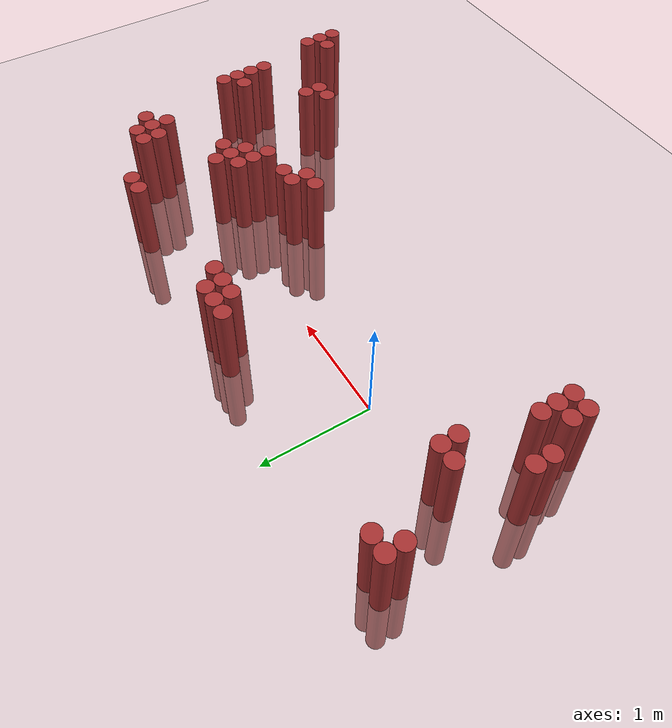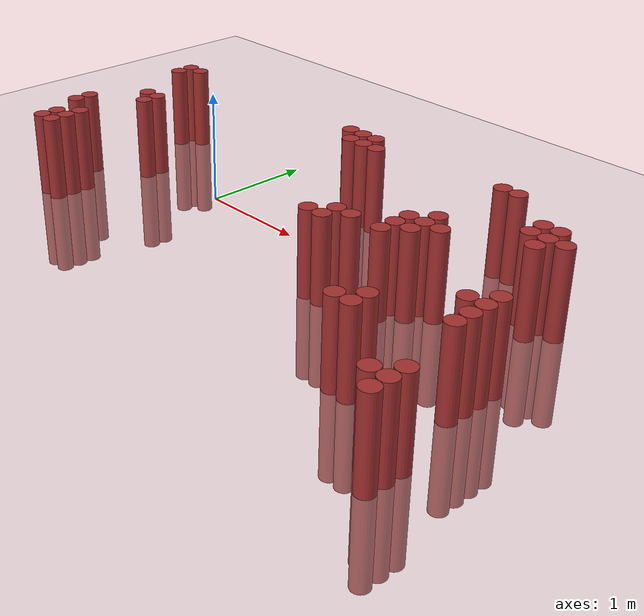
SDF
<sdf version="1.6">
 <world name="default">
  <model name="ground_plane">
   <static>1</static>
   <link name="link">
    <collision name="collision">
     <geometry><plane><normal>0 0 1</normal><size>100 100</size></plane></geometry>
     <surface><friction><ode><mu>100</mu><mu2>50</mu2></ode></friction></surface>
    </collision>
    <visual name="visual">
     <cast_shadows>0</cast_shadows>
     <geometry><plane><normal>0 0 1</normal><size>100 100</size></plane></geometry>
     <material>
      <script><uri>file://media/materials/scripts/gazebo.material</uri><name>Gazebo/Grey</name></script>
     </material>
    </visual>
   </link>
  </model>
  <model name="unit_cylinder_327">
   <static>1</static>
   <pose>-1.325000 -0.575000 0.000000 0.000000 0.000000 0.000000</pose>
   <link name="link">
    <inertial>
     <mass>1</mass>
     <inertia><ixx>0.145833</ixx><ixy>0</ixy><ixz>0</ixz><iyy>0.145833</iyy><iyz>0</iyz><izz>0.125</izz></inertia>
    </inertial>
    <collision name="collision">
     <geometry><cylinder><radius>0.075000</radius><length>1.5</length></cylinder></geometry>
    </collision>
    <visual name="visual">
     <geometry><cylinder><radius>0.075000</radius><length>1.5</length></cylinder></geometry>
     <material>
      <ambient>0.648000 0.192000 0.192000 1</ambient>
      <diffuse>0.648000 0.192000 0.192000 1</diffuse>
     </material>
     <material>
      <script><name>Gazebo/Grey</name><uri>file://media/materials/scripts/gazebo.material</uri></script>
     </material>
    </visual>
   </link>
  </model>
  <model name="unit_cylinder_328">
   <static>1</static>
   <pose>-1.325000 -0.425000 0.000000 0.000000 0.000000 0.000000</pose>
   <link name="link">
    <inertial>
     <mass>1</mass>
     <inertia><ixx>0.145833</ixx><ixy>0</ixy><ixz>0</ixz><iyy>0.145833</iyy><iyz>0</iyz><izz>0.125</izz></inertia>
    </inertial>
    <collision name="collision">
     <geometry><cylinder><radius>0.075000</radius><length>1.5</length></cylinder></geometry>
    </collision>
    <visual name="visual">
     <geometry><cylinder><radius>0.075000</radius><length>1.5</length></cylinder></geometry>
     <material>
      <ambient>0.648000 0.192000 0.192000 1</ambient>
      <diffuse>0.648000 0.192000 0.192000 1</diffuse>
     </material>
     <material>
      <script><name>Gazebo/Grey</name><uri>file://media/materials/scripts/gazebo.material</uri></script>
     </material>
    </visual>
   </link>
  </model>
  <model name="unit_cylinder_329">
   <static>1</static>
   <pose>-1.325000 0.625000 0.000000 0.000000 0.000000 0.000000</pose>
   <link name="link">
    <inertial>
     <mass>1</mass>
     <inertia><ixx>0.145833</ixx><ixy>0</ixy><ixz>0</ixz><iyy>0.145833</iyy><iyz>0</iyz><izz>0.125</izz></inertia>
    </inertial>
    <collision name="collision">
     <geometry><cylinder><radius>0.075000</radius><length>1.5</length></cylinder></geometry>
    </collision>
    <visual name="visual">
     <geometry><cylinder><radius>0.075000</radius><length>1.5</length></cylinder></geometry>
     <material>
      <ambient>0.648000 0.192000 0.192000 1</ambient>
      <diffuse>0.648000 0.192000 0.192000 1</diffuse>
     </material>
     <material>
      <script><name>Gazebo/Grey</name><uri>file://media/materials/scripts/gazebo.material</uri></script>
     </material>
    </visual>
   </link>
  </model>
  <model name="unit_cylinder_330">
   <static>1</static>
   <pose>-1.325000 0.775000 0.000000 0.000000 0.000000 0.000000</pose>
   <link name="link">
    <inertial>
     <mass>1</mass>
     <inertia><ixx>0.145833</ixx><ixy>0</ixy><ixz>0</ixz><iyy>0.145833</iyy><iyz>0</iyz><izz>0.125</izz></inertia>
    </inertial>
    <collision name="collision">
     <geometry><cylinder><radius>0.075000</radius><length>1.5</length></cylinder></geometry>
    </collision>
    <visual name="visual">
     <geometry><cylinder><radius>0.075000</radius><length>1.5</length></cylinder></geometry>
     <material>
      <ambient>0.648000 0.192000 0.192000 1</ambient>
      <diffuse>0.648000 0.192000 0.192000 1</diffuse>
     </material>
     <material>
      <script><name>Gazebo/Grey</name><uri>file://media/materials/scripts/gazebo.material</uri></script>
     </material>
    </visual>
   </link>
  </model>
  <model name="unit_cylinder_332">
   <static>1</static>
   <pose>-1.175000 -1.025000 0.000000 0.000000 0.000000 0.000000</pose>
   <link name="link">
    <inertial>
     <mass>1</mass>
     <inertia><ixx>0.145833</ixx><ixy>0</ixy><ixz>0</ixz><iyy>0.145833</iyy><iyz>0</iyz><izz>0.125</izz></inertia>
    </inertial>
    <collision name="collision">
     <geometry><cylinder><radius>0.075000</radius><length>1.5</length></cylinder></geometry>
    </collision>
    <visual name="visual">
     <geometry><cylinder><radius>0.075000</radius><length>1.5</length></cylinder></geometry>
     <material>
      <ambient>0.648000 0.192000 0.192000 1</ambient>
      <diffuse>0.648000 0.192000 0.192000 1</diffuse>
     </material>
     <material>
      <script><name>Gazebo/Grey</name><uri>file://media/materials/scripts/gazebo.material</uri></script>
     </material>
    </visual>
   </link>
  </model>
  <model name="unit_cylinder_333">
   <static>1</static>
   <pose>-1.175000 -0.875000 0.000000 0.000000 0.000000 0.000000</pose>
   <link name="link">
    <inertial>
     <mass>1</mass>
     <inertia><ixx>0.145833</ixx><ixy>0</ixy><ixz>0</ixz><iyy>0.145833</iyy><iyz>0</iyz><izz>0.125</izz></inertia>
    </inertial>
    <collision name="collision">
     <geometry><cylinder><radius>0.075000</radius><length>1.5</length></cylinder></geometry>
    </collision>
    <visual name="visual">
     <geometry><cylinder><radius>0.075000</radius><length>1.5</length></cylinder></geometry>
     <material>
      <ambient>0.648000 0.192000 0.192000 1</ambient>
      <diffuse>0.648000 0.192000 0.192000 1</diffuse>
     </material>
     <material>
      <script><name>Gazebo/Grey</name><uri>file://media/materials/scripts/gazebo.material</uri></script>
     </material>
    </visual>
   </link>
  </model>
  <model name="unit_cylinder_334">
   <static>1</static>
   <pose>-1.175000 0.775000 0.000000 0.000000 0.000000 0.000000</pose>
   <link name="link">
    <inertial>
     <mass>1</mass>
     <inertia><ixx>0.145833</ixx><ixy>0</ixy><ixz>0</ixz><iyy>0.145833</iyy><iyz>0</iyz><izz>0.125</izz></inertia>
    </inertial>
    <collision name="collision">
     <geometry><cylinder><radius>0.075000</radius><length>1.5</length></cylinder></geometry>
    </collision>
    <visual name="visual">
     <geometry><cylinder><radius>0.075000</radius><length>1.5</length></cylinder></geometry>
     <material>
      <ambient>0.648000 0.192000 0.192000 1</ambient>
      <diffuse>0.648000 0.192000 0.192000 1</diffuse>
     </material>
     <material>
      <script><name>Gazebo/Grey</name><uri>file://media/materials/scripts/gazebo.material</uri></script>
     </material>
    </visual>
   </link>
  </model>
  <model name="unit_cylinder_335">
   <static>1</static>
   <pose>-1.025000 -1.025000 0.000000 0.000000 0.000000 0.000000</pose>
   <link name="link">
    <inertial>
     <mass>1</mass>
     <inertia><ixx>0.145833</ixx><ixy>0</ixy><ixz>0</ixz><iyy>0.145833</iyy><iyz>0</iyz><izz>0.125</izz></inertia>
    </inertial>
    <collision name="collision">
     <geometry><cylinder><radius>0.075000</radius><length>1.5</length></cylinder></geometry>
    </collision>
    <visual name="visual">
     <geometry><cylinder><radius>0.075000</radius><length>1.5</length></cylinder></geometry>
     <material>
      <ambient>0.648000 0.192000 0.192000 1</ambient>
      <diffuse>0.648000 0.192000 0.192000 1</diffuse>
     </material>
     <material>
      <script><name>Gazebo/Grey</name><uri>file://media/materials/scripts/gazebo.material</uri></script>
     </material>
    </visual>
   </link>
  </model>
  <model name="unit_cylinder_336">
   <static>1</static>
   <pose>-1.025000 -0.875000 0.000000 0.000000 0.000000 0.000000</pose>
   <link name="link">
    <inertial>
     <mass>1</mass>
     <inertia><ixx>0.145833</ixx><ixy>0</ixy><ixz>0</ixz><iyy>0.145833</iyy><iyz>0</iyz><izz>0.125</izz></inertia>
    </inertial>
    <collision name="collision">
     <geometry><cylinder><radius>0.075000</radius><length>1.5</length></cylinder></geometry>
    </collision>
    <visual name="visual">
     <geometry><cylinder><radius>0.075000</radius><length>1.5</length></cylinder></geometry>
     <material>
      <ambient>0.648000 0.192000 0.192000 1</ambient>
      <diffuse>0.648000 0.192000 0.192000 1</diffuse>
     </material>
     <material>
      <script><name>Gazebo/Grey</name><uri>file://media/materials/scripts/gazebo.material</uri></script>
     </material>
    </visual>
   </link>
  </model>
  <model name="unit_cylinder_337">
   <static>1</static>
   <pose>-1.025000 -0.725000 0.000000 0.000000 0.000000 0.000000</pose>
   <link name="link">
    <inertial>
     <mass>1</mass>
     <inertia><ixx>0.145833</ixx><ixy>0</ixy><ixz>0</ixz><iyy>0.145833</iyy><iyz>0</iyz><izz>0.125</izz></inertia>
    </inertial>
    <collision name="collision">
     <geometry><cylinder><radius>0.075000</radius><length>1.5</length></cylinder></geometry>
    </collision>
    <visual name="visual">
     <geometry><cylinder><radius>0.075000</radius><length>1.5</length></cylinder></geometry>
     <material>
      <ambient>0.648000 0.192000 0.192000 1</ambient>
      <diffuse>0.648000 0.192000 0.192000 1</diffuse>
     </material>
     <material>
      <script><name>Gazebo/Grey</name><uri>file://media/materials/scripts/gazebo.material</uri></script>
     </material>
    </visual>
   </link>
  </model>
  <model name="unit_cylinder_338">
   <static>1</static>
   <pose>-1.025000 0.025000 0.000000 0.000000 0.000000 0.000000</pose>
   <link name="link">
    <inertial>
     <mass>1</mass>
     <inertia><ixx>0.145833</ixx><ixy>0</ixy><ixz>0</ixz><iyy>0.145833</iyy><iyz>0</iyz><izz>0.125</izz></inertia>
    </inertial>
    <collision name="collision">
     <geometry><cylinder><radius>0.075000</radius><length>1.5</length></cylinder></geometry>
    </collision>
    <visual name="visual">
     <geometry><cylinder><radius>0.075000</radius><length>1.5</length></cylinder></geometry>
     <material>
      <ambient>0.648000 0.192000 0.192000 1</ambient>
      <diffuse>0.648000 0.192000 0.192000 1</diffuse>
     </material>
     <material>
      <script><name>Gazebo/Grey</name><uri>file://media/materials/scripts/gazebo.material</uri></script>
     </material>
    </visual>
   </link>
  </model>
  <model name="unit_cylinder_339">
   <static>1</static>
   <pose>-0.875000 -0.125000 0.000000 0.000000 0.000000 0.000000</pose>
   <link name="link">
    <inertial>
     <mass>1</mass>
     <inertia><ixx>0.145833</ixx><ixy>0</ixy><ixz>0</ixz><iyy>0.145833</iyy><iyz>0</iyz><izz>0.125</izz></inertia>
    </inertial>
    <collision name="collision">
     <geometry><cylinder><radius>0.075000</radius><length>1.5</length></cylinder></geometry>
    </collision>
    <visual name="visual">
     <geometry><cylinder><radius>0.075000</radius><length>1.5</length></cylinder></geometry>
     <material>
      <ambient>0.648000 0.192000 0.192000 1</ambient>
      <diffuse>0.648000 0.192000 0.192000 1</diffuse>
     </material>
     <material>
      <script><name>Gazebo/Grey</name><uri>file://media/materials/scripts/gazebo.material</uri></script>
     </material>
    </visual>
   </link>
  </model>
  <model name="unit_cylinder_340">
   <static>1</static>
   <pose>-0.875000 0.025000 0.000000 0.000000 0.000000 0.000000</pose>
   <link name="link">
    <inertial>
     <mass>1</mass>
     <inertia><ixx>0.145833</ixx><ixy>0</ixy><ixz>0</ixz><iyy>0.145833</iyy><iyz>0</iyz><izz>0.125</izz></inertia>
    </inertial>
    <collision name="collision">
     <geometry><cylinder><radius>0.075000</radius><length>1.5</length></cylinder></geometry>
    </collision>
    <visual name="visual">
     <geometry><cylinder><radius>0.075000</radius><length>1.5</length></cylinder></geometry>
     <material>
      <ambient>0.648000 0.192000 0.192000 1</ambient>
      <diffuse>0.648000 0.192000 0.192000 1</diffuse>
     </material>
     <material>
      <script><name>Gazebo/Grey</name><uri>file://media/materials/scripts/gazebo.material</uri></script>
     </material>
    </visual>
   </link>
  </model>
  <model name="unit_cylinder_352">
   <static>1</static>
   <pose>0.925000 0.775000 0.000000 0.000000 0.000000 0.000000</pose>
   <link name="link">
    <inertial>
     <mass>1</mass>
     <inertia><ixx>0.145833</ixx><ixy>0</ixy><ixz>0</ixz><iyy>0.145833</iyy><iyz>0</iyz><izz>0.125</izz></inertia>
    </inertial>
    <collision name="collision">
     <geometry><cylinder><radius>0.075000</radius><length>1.5</length></cylinder></geometry>
    </collision>
    <visual name="visual">
     <geometry><cylinder><radius>0.075000</radius><length>1.5</length></cylinder></geometry>
     <material>
      <ambient>0.648000 0.192000 0.192000 1</ambient>
      <diffuse>0.648000 0.192000 0.192000 1</diffuse>
     </material>
     <material>
      <script><name>Gazebo/Grey</name><uri>file://media/materials/scripts/gazebo.material</uri></script>
     </material>
    </visual>
   </link>
  </model>
  <model name="unit_cylinder_355">
   <static>1</static>
   <pose>1.075000 0.625000 0.000000 0.000000 0.000000 0.000000</pose>
   <link name="link">
    <inertial>
     <mass>1</mass>
     <inertia><ixx>0.145833</ixx><ixy>0</ixy><ixz>0</ixz><iyy>0.145833</iyy><iyz>0</iyz><izz>0.125</izz></inertia>
    </inertial>
    <collision name="collision">
     <geometry><cylinder><radius>0.075000</radius><length>1.5</length></cylinder></geometry>
    </collision>
    <visual name="visual">
     <geometry><cylinder><radius>0.075000</radius><length>1.5</length></cylinder></geometry>
     <material>
      <ambient>0.648000 0.192000 0.192000 1</ambient>
      <diffuse>0.648000 0.192000 0.192000 1</diffuse>
     </material>
     <material>
      <script><name>Gazebo/Grey</name><uri>file://media/materials/scripts/gazebo.material</uri></script>
     </material>
    </visual>
   </link>
  </model>
  <model name="unit_cylinder_356">
   <static>1</static>
   <pose>1.075000 0.775000 0.000000 0.000000 0.000000 0.000000</pose>
   <link name="link">
    <inertial>
     <mass>1</mass>
     <inertia><ixx>0.145833</ixx><ixy>0</ixy><ixz>0</ixz><iyy>0.145833</iyy><iyz>0</iyz><izz>0.125</izz></inertia>
    </inertial>
    <collision name="collision">
     <geometry><cylinder><radius>0.075000</radius><length>1.5</length></cylinder></geometry>
    </collision>
    <visual name="visual">
     <geometry><cylinder><radius>0.075000</radius><length>1.5</length></cylinder></geometry>
     <material>
      <ambient>0.648000 0.192000 0.192000 1</ambient>
      <diffuse>0.648000 0.192000 0.192000 1</diffuse>
     </material>
     <material>
      <script><name>Gazebo/Grey</name><uri>file://media/materials/scripts/gazebo.material</uri></script>
     </material>
    </visual>
   </link>
  </model>
  <model name="unit_cylinder_362">
   <static>1</static>
   <pose>1.225000 0.625000 0.000000 0.000000 0.000000 0.000000</pose>
   <link name="link">
    <inertial>
     <mass>1</mass>
     <inertia><ixx>0.145833</ixx><ixy>0</ixy><ixz>0</ixz><iyy>0.145833</iyy><iyz>0</iyz><izz>0.125</izz></inertia>
    </inertial>
    <collision name="collision">
     <geometry><cylinder><radius>0.075000</radius><length>1.5</length></cylinder></geometry>
    </collision>
    <visual name="visual">
     <geometry><cylinder><radius>0.075000</radius><length>1.5</length></cylinder></geometry>
     <material>
      <ambient>0.648000 0.192000 0.192000 1</ambient>
      <diffuse>0.648000 0.192000 0.192000 1</diffuse>
     </material>
     <material>
      <script><name>Gazebo/Grey</name><uri>file://media/materials/scripts/gazebo.material</uri></script>
     </material>
    </visual>
   </link>
  </model>
  <model name="unit_cylinder_363">
   <static>1</static>
   <pose>1.225000 0.775000 0.000000 0.000000 0.000000 0.000000</pose>
   <link name="link">
    <inertial>
     <mass>1</mass>
     <inertia><ixx>0.145833</ixx><ixy>0</ixy><ixz>0</ixz><iyy>0.145833</iyy><iyz>0</iyz><izz>0.125</izz></inertia>
    </inertial>
    <collision name="collision">
     <geometry><cylinder><radius>0.075000</radius><length>1.5</length></cylinder></geometry>
    </collision>
    <visual name="visual">
     <geometry><cylinder><radius>0.075000</radius><length>1.5</length></cylinder></geometry>
     <material>
      <ambient>0.648000 0.192000 0.192000 1</ambient>
      <diffuse>0.648000 0.192000 0.192000 1</diffuse>
     </material>
     <material>
      <script><name>Gazebo/Grey</name><uri>file://media/materials/scripts/gazebo.material</uri></script>
     </material>
    </visual>
   </link>
  </model>
  <model name="unit_cylinder_369">
   <static>1</static>
   <pose>1.375000 0.625000 0.000000 0.000000 0.000000 0.000000</pose>
   <link name="link">
    <inertial>
     <mass>1</mass>
     <inertia><ixx>0.145833</ixx><ixy>0</ixy><ixz>0</ixz><iyy>0.145833</iyy><iyz>0</iyz><izz>0.125</izz></inertia>
    </inertial>
    <collision name="collision">
     <geometry><cylinder><radius>0.075000</radius><length>1.5</length></cylinder></geometry>
    </collision>
    <visual name="visual">
     <geometry><cylinder><radius>0.075000</radius><length>1.5</length></cylinder></geometry>
     <material>
      <ambient>0.648000 0.192000 0.192000 1</ambient>
      <diffuse>0.648000 0.192000 0.192000 1</diffuse>
     </material>
     <material>
      <script><name>Gazebo/Grey</name><uri>file://media/materials/scripts/gazebo.material</uri></script>
     </material>
    </visual>
   </link>
  </model>
  <model name="unit_cylinder_386">
   <static>1</static>
   <pose>1.825000 -0.575000 0.000000 0.000000 0.000000 0.000000</pose>
   <link name="link">
    <inertial>
     <mass>1</mass>
     <inertia><ixx>0.145833</ixx><ixy>0</ixy><ixz>0</ixz><iyy>0.145833</iyy><iyz>0</iyz><izz>0.125</izz></inertia>
    </inertial>
    <collision name="collision">
     <geometry><cylinder><radius>0.075000</radius><length>1.5</length></cylinder></geometry>
    </collision>
    <visual name="visual">
     <geometry><cylinder><radius>0.075000</radius><length>1.5</length></cylinder></geometry>
     <material>
      <ambient>0.648000 0.192000 0.192000 1</ambient>
      <diffuse>0.648000 0.192000 0.192000 1</diffuse>
     </material>
     <material>
      <script><name>Gazebo/Grey</name><uri>file://media/materials/scripts/gazebo.material</uri></script>
     </material>
    </visual>
   </link>
  </model>
  <model name="unit_cylinder_387">
   <static>1</static>
   <pose>1.975000 -0.575000 0.000000 0.000000 0.000000 0.000000</pose>
   <link name="link">
    <inertial>
     <mass>1</mass>
     <inertia><ixx>0.145833</ixx><ixy>0</ixy><ixz>0</ixz><iyy>0.145833</iyy><iyz>0</iyz><izz>0.125</izz></inertia>
    </inertial>
    <collision name="collision">
     <geometry><cylinder><radius>0.075000</radius><length>1.5</length></cylinder></geometry>
    </collision>
    <visual name="visual">
     <geometry><cylinder><radius>0.075000</radius><length>1.5</length></cylinder></geometry>
     <material>
      <ambient>0.648000 0.192000 0.192000 1</ambient>
      <diffuse>0.648000 0.192000 0.192000 1</diffuse>
     </material>
     <material>
      <script><name>Gazebo/Grey</name><uri>file://media/materials/scripts/gazebo.material</uri></script>
     </material>
    </visual>
   </link>
  </model>
  <model name="unit_cylinder_388">
   <static>1</static>
   <pose>1.975000 -0.425000 0.000000 0.000000 0.000000 0.000000</pose>
   <link name="link">
    <inertial>
     <mass>1</mass>
     <inertia><ixx>0.145833</ixx><ixy>0</ixy><ixz>0</ixz><iyy>0.145833</iyy><iyz>0</iyz><izz>0.125</izz></inertia>
    </inertial>
    <collision name="collision">
     <geometry><cylinder><radius>0.075000</radius><length>1.5</length></cylinder></geometry>
    </collision>
    <visual name="visual">
     <geometry><cylinder><radius>0.075000</radius><length>1.5</length></cylinder></geometry>
     <material>
      <ambient>0.648000 0.192000 0.192000 1</ambient>
      <diffuse>0.648000 0.192000 0.192000 1</diffuse>
     </material>
     <material>
      <script><name>Gazebo/Grey</name><uri>file://media/materials/scripts/gazebo.material</uri></script>
     </material>
    </visual>
   </link>
  </model>
  <model name="unit_cylinder_389">
   <static>1</static>
   <pose>2.125000 -0.425000 0.000000 0.000000 0.000000 0.000000</pose>
   <link name="link">
    <inertial>
     <mass>1</mass>
     <inertia><ixx>0.145833</ixx><ixy>0</ixy><ixz>0</ixz><iyy>0.145833</iyy><iyz>0</iyz><izz>0.125</izz></inertia>
    </inertial>
    <collision name="collision">
     <geometry><cylinder><radius>0.075000</radius><length>1.5</length></cylinder></geometry>
    </collision>
    <visual name="visual">
     <geometry><cylinder><radius>0.075000</radius><length>1.5</length></cylinder></geometry>
     <material>
      <ambient>0.648000 0.192000 0.192000 1</ambient>
      <diffuse>0.648000 0.192000 0.192000 1</diffuse>
     </material>
     <material>
      <script><name>Gazebo/Grey</name><uri>file://media/materials/scripts/gazebo.material</uri></script>
     </material>
    </visual>
   </link>
  </model>
  <model name="unit_cylinder_393">
   <static>1</static>
   <pose>2.425000 -0.425000 0.000000 0.000000 0.000000 0.000000</pose>
   <link name="link">
    <inertial>
     <mass>1</mass>
     <inertia><ixx>0.145833</ixx><ixy>0</ixy><ixz>0</ixz><iyy>0.145833</iyy><iyz>0</iyz><izz>0.125</izz></inertia>
    </inertial>
    <collision name="collision">
     <geometry><cylinder><radius>0.075000</radius><length>1.5</length></cylinder></geometry>
    </collision>
    <visual name="visual">
     <geometry><cylinder><radius>0.075000</radius><length>1.5</length></cylinder></geometry>
     <material>
      <ambient>0.648000 0.192000 0.192000 1</ambient>
      <diffuse>0.648000 0.192000 0.192000 1</diffuse>
     </material>
     <material>
      <script><name>Gazebo/Grey</name><uri>file://media/materials/scripts/gazebo.material</uri></script>
     </material>
    </visual>
   </link>
  </model>
  <model name="unit_cylinder_394">
   <static>1</static>
   <pose>2.425000 -0.275000 0.000000 0.000000 0.000000 0.000000</pose>
   <link name="link">
    <inertial>
     <mass>1</mass>
     <inertia><ixx>0.145833</ixx><ixy>0</ixy><ixz>0</ixz><iyy>0.145833</iyy><iyz>0</iyz><izz>0.125</izz></inertia>
    </inertial>
    <collision name="collision">
     <geometry><cylinder><radius>0.075000</radius><length>1.5</length></cylinder></geometry>
    </collision>
    <visual name="visual">
     <geometry><cylinder><radius>0.075000</radius><length>1.5</length></cylinder></geometry>
     <material>
      <ambient>0.648000 0.192000 0.192000 1</ambient>
      <diffuse>0.648000 0.192000 0.192000 1</diffuse>
     </material>
     <material>
      <script><name>Gazebo/Grey</name><uri>file://media/materials/scripts/gazebo.material</uri></script>
     </material>
    </visual>
   </link>
  </model>
  <model name="unit_cylinder_395">
   <static>1</static>
   <pose>2.425000 -0.125000 0.000000 0.000000 0.000000 0.000000</pose>
   <link name="link">
    <inertial>
     <mass>1</mass>
     <inertia><ixx>0.145833</ixx><ixy>0</ixy><ixz>0</ixz><iyy>0.145833</iyy><iyz>0</iyz><izz>0.125</izz></inertia>
    </inertial>
    <collision name="collision">
     <geometry><cylinder><radius>0.075000</radius><length>1.5</length></cylinder></geometry>
    </collision>
    <visual name="visual">
     <geometry><cylinder><radius>0.075000</radius><length>1.5</length></cylinder></geometry>
     <material>
      <ambient>0.648000 0.192000 0.192000 1</ambient>
      <diffuse>0.648000 0.192000 0.192000 1</diffuse>
     </material>
     <material>
      <script><name>Gazebo/Grey</name><uri>file://media/materials/scripts/gazebo.material</uri></script>
     </material>
    </visual>
   </link>
  </model>
  <model name="unit_cylinder_397">
   <static>1</static>
   <pose>2.575000 -0.275000 0.000000 0.000000 0.000000 0.000000</pose>
   <link name="link">
    <inertial>
     <mass>1</mass>
     <inertia><ixx>0.145833</ixx><ixy>0</ixy><ixz>0</ixz><iyy>0.145833</iyy><iyz>0</iyz><izz>0.125</izz></inertia>
    </inertial>
    <collision name="collision">
     <geometry><cylinder><radius>0.075000</radius><length>1.5</length></cylinder></geometry>
    </collision>
    <visual name="visual">
     <geometry><cylinder><radius>0.075000</radius><length>1.5</length></cylinder></geometry>
     <material>
      <ambient>0.648000 0.192000 0.192000 1</ambient>
      <diffuse>0.648000 0.192000 0.192000 1</diffuse>
     </material>
     <material>
      <script><name>Gazebo/Grey</name><uri>file://media/materials/scripts/gazebo.material</uri></script>
     </material>
    </visual>
   </link>
  </model>
  <model name="unit_cylinder_398">
   <static>1</static>
   <pose>2.575000 -0.125000 0.000000 0.000000 0.000000 0.000000</pose>
   <link name="link">
    <inertial>
     <mass>1</mass>
     <inertia><ixx>0.145833</ixx><ixy>0</ixy><ixz>0</ixz><iyy>0.145833</iyy><iyz>0</iyz><izz>0.125</izz></inertia>
    </inertial>
    <collision name="collision">
     <geometry><cylinder><radius>0.075000</radius><length>1.5</length></cylinder></geometry>
    </collision>
    <visual name="visual">
     <geometry><cylinder><radius>0.075000</radius><length>1.5</length></cylinder></geometry>
     <material>
      <ambient>0.648000 0.192000 0.192000 1</ambient>
      <diffuse>0.648000 0.192000 0.192000 1</diffuse>
     </material>
     <material>
      <script><name>Gazebo/Grey</name><uri>file://media/materials/scripts/gazebo.material</uri></script>
     </material>
    </visual>
   </link>
  </model>
  <model name="unit_cylinder_399">
   <static>1</static>
   <pose>2.575000 0.025000 0.000000 0.000000 0.000000 0.000000</pose>
   <link name="link">
    <inertial>
     <mass>1</mass>
     <inertia><ixx>0.145833</ixx><ixy>0</ixy><ixz>0</ixz><iyy>0.145833</iyy><iyz>0</iyz><izz>0.125</izz></inertia>
    </inertial>
    <collision name="collision">
     <geometry><cylinder><radius>0.075000</radius><length>1.5</length></cylinder></geometry>
    </collision>
    <visual name="visual">
     <geometry><cylinder><radius>0.075000</radius><length>1.5</length></cylinder></geometry>
     <material>
      <ambient>0.648000 0.192000 0.192000 1</ambient>
      <diffuse>0.648000 0.192000 0.192000 1</diffuse>
     </material>
     <material>
      <script><name>Gazebo/Grey</name><uri>file://media/materials/scripts/gazebo.material</uri></script>
     </material>
    </visual>
   </link>
  </model>
  <model name="unit_cylinder_400">
   <static>1</static>
   <pose>2.575000 0.775000 0.000000 0.000000 0.000000 0.000000</pose>
   <link name="link">
    <inertial>
     <mass>1</mass>
     <inertia><ixx>0.145833</ixx><ixy>0</ixy><ixz>0</ixz><iyy>0.145833</iyy><iyz>0</iyz><izz>0.125</izz></inertia>
    </inertial>
    <collision name="collision">
     <geometry><cylinder><radius>0.075000</radius><length>1.5</length></cylinder></geometry>
    </collision>
    <visual name="visual">
     <geometry><cylinder><radius>0.075000</radius><length>1.5</length></cylinder></geometry>
     <material>
      <ambient>0.648000 0.192000 0.192000 1</ambient>
      <diffuse>0.648000 0.192000 0.192000 1</diffuse>
     </material>
     <material>
      <script><name>Gazebo/Grey</name><uri>file://media/materials/scripts/gazebo.material</uri></script>
     </material>
    </visual>
   </link>
  </model>
  <model name="unit_cylinder_403">
   <static>1</static>
   <pose>2.725000 -0.125000 0.000000 0.000000 0.000000 0.000000</pose>
   <link name="link">
    <inertial>
     <mass>1</mass>
     <inertia><ixx>0.145833</ixx><ixy>0</ixy><ixz>0</ixz><iyy>0.145833</iyy><iyz>0</iyz><izz>0.125</izz></inertia>
    </inertial>
    <collision name="collision">
     <geometry><cylinder><radius>0.075000</radius><length>1.5</length></cylinder></geometry>
    </collision>
    <visual name="visual">
     <geometry><cylinder><radius>0.075000</radius><length>1.5</length></cylinder></geometry>
     <material>
      <ambient>0.648000 0.192000 0.192000 1</ambient>
      <diffuse>0.648000 0.192000 0.192000 1</diffuse>
     </material>
     <material>
      <script><name>Gazebo/Grey</name><uri>file://media/materials/scripts/gazebo.material</uri></script>
     </material>
    </visual>
   </link>
  </model>
  <model name="unit_cylinder_404">
   <static>1</static>
   <pose>2.725000 0.775000 0.000000 0.000000 0.000000 0.000000</pose>
   <link name="link">
    <inertial>
     <mass>1</mass>
     <inertia><ixx>0.145833</ixx><ixy>0</ixy><ixz>0</ixz><iyy>0.145833</iyy><iyz>0</iyz><izz>0.125</izz></inertia>
    </inertial>
    <collision name="collision">
     <geometry><cylinder><radius>0.075000</radius><length>1.5</length></cylinder></geometry>
    </collision>
    <visual name="visual">
     <geometry><cylinder><radius>0.075000</radius><length>1.5</length></cylinder></geometry>
     <material>
      <ambient>0.648000 0.192000 0.192000 1</ambient>
      <diffuse>0.648000 0.192000 0.192000 1</diffuse>
     </material>
     <material>
      <script><name>Gazebo/Grey</name><uri>file://media/materials/scripts/gazebo.material</uri></script>
     </material>
    </visual>
   </link>
  </model>
  <model name="unit_cylinder_406">
   <static>1</static>
   <pose>2.875000 -1.325000 0.000000 0.000000 0.000000 0.000000</pose>
   <link name="link">
    <inertial>
     <mass>1</mass>
     <inertia><ixx>0.145833</ixx><ixy>0</ixy><ixz>0</ixz><iyy>0.145833</iyy><iyz>0</iyz><izz>0.125</izz></inertia>
    </inertial>
    <collision name="collision">
     <geometry><cylinder><radius>0.075000</radius><length>1.5</length></cylinder></geometry>
    </collision>
    <visual name="visual">
     <geometry><cylinder><radius>0.075000</radius><length>1.5</length></cylinder></geometry>
     <material>
      <ambient>0.648000 0.192000 0.192000 1</ambient>
      <diffuse>0.648000 0.192000 0.192000 1</diffuse>
     </material>
     <material>
      <script><name>Gazebo/Grey</name><uri>file://media/materials/scripts/gazebo.material</uri></script>
     </material>
    </visual>
   </link>
  </model>
  <model name="unit_cylinder_409">
   <static>1</static>
   <pose>3.025000 -1.325000 0.000000 0.000000 0.000000 0.000000</pose>
   <link name="link">
    <inertial>
     <mass>1</mass>
     <inertia><ixx>0.145833</ixx><ixy>0</ixy><ixz>0</ixz><iyy>0.145833</iyy><iyz>0</iyz><izz>0.125</izz></inertia>
    </inertial>
    <collision name="collision">
     <geometry><cylinder><radius>0.075000</radius><length>1.5</length></cylinder></geometry>
    </collision>
    <visual name="visual">
     <geometry><cylinder><radius>0.075000</radius><length>1.5</length></cylinder></geometry>
     <material>
      <ambient>0.648000 0.192000 0.192000 1</ambient>
      <diffuse>0.648000 0.192000 0.192000 1</diffuse>
     </material>
     <material>
      <script><name>Gazebo/Grey</name><uri>file://media/materials/scripts/gazebo.material</uri></script>
     </material>
    </visual>
   </link>
  </model>
  <model name="unit_cylinder_410">
   <static>1</static>
   <pose>3.025000 -1.175000 0.000000 0.000000 0.000000 0.000000</pose>
   <link name="link">
    <inertial>
     <mass>1</mass>
     <inertia><ixx>0.145833</ixx><ixy>0</ixy><ixz>0</ixz><iyy>0.145833</iyy><iyz>0</iyz><izz>0.125</izz></inertia>
    </inertial>
    <collision name="collision">
     <geometry><cylinder><radius>0.075000</radius><length>1.5</length></cylinder></geometry>
    </collision>
    <visual name="visual">
     <geometry><cylinder><radius>0.075000</radius><length>1.5</length></cylinder></geometry>
     <material>
      <ambient>0.648000 0.192000 0.192000 1</ambient>
      <diffuse>0.648000 0.192000 0.192000 1</diffuse>
     </material>
     <material>
      <script><name>Gazebo/Grey</name><uri>file://media/materials/scripts/gazebo.material</uri></script>
     </material>
    </visual>
   </link>
  </model>
  <model name="unit_cylinder_414">
   <static>1</static>
   <pose>3.175000 0.325000 0.000000 0.000000 0.000000 0.000000</pose>
   <link name="link">
    <inertial>
     <mass>1</mass>
     <inertia><ixx>0.145833</ixx><ixy>0</ixy><ixz>0</ixz><iyy>0.145833</iyy><iyz>0</iyz><izz>0.125</izz></inertia>
    </inertial>
    <collision name="collision">
     <geometry><cylinder><radius>0.075000</radius><length>1.5</length></cylinder></geometry>
    </collision>
    <visual name="visual">
     <geometry><cylinder><radius>0.075000</radius><length>1.5</length></cylinder></geometry>
     <material>
      <ambient>0.648000 0.192000 0.192000 1</ambient>
      <diffuse>0.648000 0.192000 0.192000 1</diffuse>
     </material>
     <material>
      <script><name>Gazebo/Grey</name><uri>file://media/materials/scripts/gazebo.material</uri></script>
     </material>
    </visual>
   </link>
  </model>
  <model name="unit_cylinder_415">
   <static>1</static>
   <pose>3.175000 0.475000 0.000000 0.000000 0.000000 0.000000</pose>
   <link name="link">
    <inertial>
     <mass>1</mass>
     <inertia><ixx>0.145833</ixx><ixy>0</ixy><ixz>0</ixz><iyy>0.145833</iyy><iyz>0</iyz><izz>0.125</izz></inertia>
    </inertial>
    <collision name="collision">
     <geometry><cylinder><radius>0.075000</radius><length>1.5</length></cylinder></geometry>
    </collision>
    <visual name="visual">
     <geometry><cylinder><radius>0.075000</radius><length>1.5</length></cylinder></geometry>
     <material>
      <ambient>0.648000 0.192000 0.192000 1</ambient>
      <diffuse>0.648000 0.192000 0.192000 1</diffuse>
     </material>
     <material>
      <script><name>Gazebo/Grey</name><uri>file://media/materials/scripts/gazebo.material</uri></script>
     </material>
    </visual>
   </link>
  </model>
  <model name="unit_cylinder_418">
   <static>1</static>
   <pose>3.325000 0.175000 0.000000 0.000000 0.000000 0.000000</pose>
   <link name="link">
    <inertial>
     <mass>1</mass>
     <inertia><ixx>0.145833</ixx><ixy>0</ixy><ixz>0</ixz><iyy>0.145833</iyy><iyz>0</iyz><izz>0.125</izz></inertia>
    </inertial>
    <collision name="collision">
     <geometry><cylinder><radius>0.075000</radius><length>1.5</length></cylinder></geometry>
    </collision>
    <visual name="visual">
     <geometry><cylinder><radius>0.075000</radius><length>1.5</length></cylinder></geometry>
     <material>
      <ambient>0.648000 0.192000 0.192000 1</ambient>
      <diffuse>0.648000 0.192000 0.192000 1</diffuse>
     </material>
     <material>
      <script><name>Gazebo/Grey</name><uri>file://media/materials/scripts/gazebo.material</uri></script>
     </material>
    </visual>
   </link>
  </model>
  <model name="unit_cylinder_419">
   <static>1</static>
   <pose>3.325000 0.325000 0.000000 0.000000 0.000000 0.000000</pose>
   <link name="link">
    <inertial>
     <mass>1</mass>
     <inertia><ixx>0.145833</ixx><ixy>0</ixy><ixz>0</ixz><iyy>0.145833</iyy><iyz>0</iyz><izz>0.125</izz></inertia>
    </inertial>
    <collision name="collision">
     <geometry><cylinder><radius>0.075000</radius><length>1.5</length></cylinder></geometry>
    </collision>
    <visual name="visual">
     <geometry><cylinder><radius>0.075000</radius><length>1.5</length></cylinder></geometry>
     <material>
      <ambient>0.648000 0.192000 0.192000 1</ambient>
      <diffuse>0.648000 0.192000 0.192000 1</diffuse>
     </material>
     <material>
      <script><name>Gazebo/Grey</name><uri>file://media/materials/scripts/gazebo.material</uri></script>
     </material>
    </visual>
   </link>
  </model>
  <model name="unit_cylinder_420">
   <static>1</static>
   <pose>3.325000 0.475000 0.000000 0.000000 0.000000 0.000000</pose>
   <link name="link">
    <inertial>
     <mass>1</mass>
     <inertia><ixx>0.145833</ixx><ixy>0</ixy><ixz>0</ixz><iyy>0.145833</iyy><iyz>0</iyz><izz>0.125</izz></inertia>
    </inertial>
    <collision name="collision">
     <geometry><cylinder><radius>0.075000</radius><length>1.5</length></cylinder></geometry>
    </collision>
    <visual name="visual">
     <geometry><cylinder><radius>0.075000</radius><length>1.5</length></cylinder></geometry>
     <material>
      <ambient>0.648000 0.192000 0.192000 1</ambient>
      <diffuse>0.648000 0.192000 0.192000 1</diffuse>
     </material>
     <material>
      <script><name>Gazebo/Grey</name><uri>file://media/materials/scripts/gazebo.material</uri></script>
     </material>
    </visual>
   </link>
  </model>
  <model name="unit_cylinder_421">
   <static>1</static>
   <pose>3.475000 -0.725000 0.000000 0.000000 0.000000 0.000000</pose>
   <link name="link">
    <inertial>
     <mass>1</mass>
     <inertia><ixx>0.145833</ixx><ixy>0</ixy><ixz>0</ixz><iyy>0.145833</iyy><iyz>0</iyz><izz>0.125</izz></inertia>
    </inertial>
    <collision name="collision">
     <geometry><cylinder><radius>0.075000</radius><length>1.5</length></cylinder></geometry>
    </collision>
    <visual name="visual">
     <geometry><cylinder><radius>0.075000</radius><length>1.5</length></cylinder></geometry>
     <material>
      <ambient>0.648000 0.192000 0.192000 1</ambient>
      <diffuse>0.648000 0.192000 0.192000 1</diffuse>
     </material>
     <material>
      <script><name>Gazebo/Grey</name><uri>file://media/materials/scripts/gazebo.material</uri></script>
     </material>
    </visual>
   </link>
  </model>
  <model name="unit_cylinder_422">
   <static>1</static>
   <pose>3.475000 0.325000 0.000000 0.000000 0.000000 0.000000</pose>
   <link name="link">
    <inertial>
     <mass>1</mass>
     <inertia><ixx>0.145833</ixx><ixy>0</ixy><ixz>0</ixz><iyy>0.145833</iyy><iyz>0</iyz><izz>0.125</izz></inertia>
    </inertial>
    <collision name="collision">
     <geometry><cylinder><radius>0.075000</radius><length>1.5</length></cylinder></geometry>
    </collision>
    <visual name="visual">
     <geometry><cylinder><radius>0.075000</radius><length>1.5</length></cylinder></geometry>
     <material>
      <ambient>0.648000 0.192000 0.192000 1</ambient>
      <diffuse>0.648000 0.192000 0.192000 1</diffuse>
     </material>
     <material>
      <script><name>Gazebo/Grey</name><uri>file://media/materials/scripts/gazebo.material</uri></script>
     </material>
    </visual>
   </link>
  </model>
  <model name="unit_cylinder_423">
   <static>1</static>
   <pose>3.625000 -1.775000 0.000000 0.000000 0.000000 0.000000</pose>
   <link name="link">
    <inertial>
     <mass>1</mass>
     <inertia><ixx>0.145833</ixx><ixy>0</ixy><ixz>0</ixz><iyy>0.145833</iyy><iyz>0</iyz><izz>0.125</izz></inertia>
    </inertial>
    <collision name="collision">
     <geometry><cylinder><radius>0.075000</radius><length>1.5</length></cylinder></geometry>
    </collision>
    <visual name="visual">
     <geometry><cylinder><radius>0.075000</radius><length>1.5</length></cylinder></geometry>
     <material>
      <ambient>0.648000 0.192000 0.192000 1</ambient>
      <diffuse>0.648000 0.192000 0.192000 1</diffuse>
     </material>
     <material>
      <script><name>Gazebo/Grey</name><uri>file://media/materials/scripts/gazebo.material</uri></script>
     </material>
    </visual>
   </link>
  </model>
  <model name="unit_cylinder_424">
   <static>1</static>
   <pose>3.625000 -1.025000 0.000000 0.000000 0.000000 0.000000</pose>
   <link name="link">
    <inertial>
     <mass>1</mass>
     <inertia><ixx>0.145833</ixx><ixy>0</ixy><ixz>0</ixz><iyy>0.145833</iyy><iyz>0</iyz><izz>0.125</izz></inertia>
    </inertial>
    <collision name="collision">
     <geometry><cylinder><radius>0.075000</radius><length>1.5</length></cylinder></geometry>
    </collision>
    <visual name="visual">
     <geometry><cylinder><radius>0.075000</radius><length>1.5</length></cylinder></geometry>
     <material>
      <ambient>0.648000 0.192000 0.192000 1</ambient>
      <diffuse>0.648000 0.192000 0.192000 1</diffuse>
     </material>
     <material>
      <script><name>Gazebo/Grey</name><uri>file://media/materials/scripts/gazebo.material</uri></script>
     </material>
    </visual>
   </link>
  </model>
  <model name="unit_cylinder_425">
   <static>1</static>
   <pose>3.625000 -0.875000 0.000000 0.000000 0.000000 0.000000</pose>
   <link name="link">
    <inertial>
     <mass>1</mass>
     <inertia><ixx>0.145833</ixx><ixy>0</ixy><ixz>0</ixz><iyy>0.145833</iyy><iyz>0</iyz><izz>0.125</izz></inertia>
    </inertial>
    <collision name="collision">
     <geometry><cylinder><radius>0.075000</radius><length>1.5</length></cylinder></geometry>
    </collision>
    <visual name="visual">
     <geometry><cylinder><radius>0.075000</radius><length>1.5</length></cylinder></geometry>
     <material>
      <ambient>0.648000 0.192000 0.192000 1</ambient>
      <diffuse>0.648000 0.192000 0.192000 1</diffuse>
     </material>
     <material>
      <script><name>Gazebo/Grey</name><uri>file://media/materials/scripts/gazebo.material</uri></script>
     </material>
    </visual>
   </link>
  </model>
  <model name="unit_cylinder_426">
   <static>1</static>
   <pose>3.625000 -0.725000 0.000000 0.000000 0.000000 0.000000</pose>
   <link name="link">
    <inertial>
     <mass>1</mass>
     <inertia><ixx>0.145833</ixx><ixy>0</ixy><ixz>0</ixz><iyy>0.145833</iyy><iyz>0</iyz><izz>0.125</izz></inertia>
    </inertial>
    <collision name="collision">
     <geometry><cylinder><radius>0.075000</radius><length>1.5</length></cylinder></geometry>
    </collision>
    <visual name="visual">
     <geometry><cylinder><radius>0.075000</radius><length>1.5</length></cylinder></geometry>
     <material>
      <ambient>0.648000 0.192000 0.192000 1</ambient>
      <diffuse>0.648000 0.192000 0.192000 1</diffuse>
     </material>
     <material>
      <script><name>Gazebo/Grey</name><uri>file://media/materials/scripts/gazebo.material</uri></script>
     </material>
    </visual>
   </link>
  </model>
  <model name="unit_cylinder_427">
   <static>1</static>
   <pose>3.625000 -0.575000 0.000000 0.000000 0.000000 0.000000</pose>
   <link name="link">
    <inertial>
     <mass>1</mass>
     <inertia><ixx>0.145833</ixx><ixy>0</ixy><ixz>0</ixz><iyy>0.145833</iyy><iyz>0</iyz><izz>0.125</izz></inertia>
    </inertial>
    <collision name="collision">
     <geometry><cylinder><radius>0.075000</radius><length>1.5</length></cylinder></geometry>
    </collision>
    <visual name="visual">
     <geometry><cylinder><radius>0.075000</radius><length>1.5</length></cylinder></geometry>
     <material>
      <ambient>0.648000 0.192000 0.192000 1</ambient>
      <diffuse>0.648000 0.192000 0.192000 1</diffuse>
     </material>
     <material>
      <script><name>Gazebo/Grey</name><uri>file://media/materials/scripts/gazebo.material</uri></script>
     </material>
    </visual>
   </link>
  </model>
  <model name="unit_cylinder_432">
   <static>1</static>
   <pose>3.775000 -1.925000 0.000000 0.000000 0.000000 0.000000</pose>
   <link name="link">
    <inertial>
     <mass>1</mass>
     <inertia><ixx>0.145833</ixx><ixy>0</ixy><ixz>0</ixz><iyy>0.145833</iyy><iyz>0</iyz><izz>0.125</izz></inertia>
    </inertial>
    <collision name="collision">
     <geometry><cylinder><radius>0.075000</radius><length>1.5</length></cylinder></geometry>
    </collision>
    <visual name="visual">
     <geometry><cylinder><radius>0.075000</radius><length>1.5</length></cylinder></geometry>
     <material>
      <ambient>0.648000 0.192000 0.192000 1</ambient>
      <diffuse>0.648000 0.192000 0.192000 1</diffuse>
     </material>
     <material>
      <script><name>Gazebo/Grey</name><uri>file://media/materials/scripts/gazebo.material</uri></script>
     </material>
    </visual>
   </link>
  </model>
  <model name="unit_cylinder_433">
   <static>1</static>
   <pose>3.775000 -1.775000 0.000000 0.000000 0.000000 0.000000</pose>
   <link name="link">
    <inertial>
     <mass>1</mass>
     <inertia><ixx>0.145833</ixx><ixy>0</ixy><ixz>0</ixz><iyy>0.145833</iyy><iyz>0</iyz><izz>0.125</izz></inertia>
    </inertial>
    <collision name="collision">
     <geometry><cylinder><radius>0.075000</radius><length>1.5</length></cylinder></geometry>
    </collision>
    <visual name="visual">
     <geometry><cylinder><radius>0.075000</radius><length>1.5</length></cylinder></geometry>
     <material>
      <ambient>0.648000 0.192000 0.192000 1</ambient>
      <diffuse>0.648000 0.192000 0.192000 1</diffuse>
     </material>
     <material>
      <script><name>Gazebo/Grey</name><uri>file://media/materials/scripts/gazebo.material</uri></script>
     </material>
    </visual>
   </link>
  </model>
  <model name="unit_cylinder_434">
   <static>1</static>
   <pose>3.775000 -1.625000 0.000000 0.000000 0.000000 0.000000</pose>
   <link name="link">
    <inertial>
     <mass>1</mass>
     <inertia><ixx>0.145833</ixx><ixy>0</ixy><ixz>0</ixz><iyy>0.145833</iyy><iyz>0</iyz><izz>0.125</izz></inertia>
    </inertial>
    <collision name="collision">
     <geometry><cylinder><radius>0.075000</radius><length>1.5</length></cylinder></geometry>
    </collision>
    <visual name="visual">
     <geometry><cylinder><radius>0.075000</radius><length>1.5</length></cylinder></geometry>
     <material>
      <ambient>0.648000 0.192000 0.192000 1</ambient>
      <diffuse>0.648000 0.192000 0.192000 1</diffuse>
     </material>
     <material>
      <script><name>Gazebo/Grey</name><uri>file://media/materials/scripts/gazebo.material</uri></script>
     </material>
    </visual>
   </link>
  </model>
 </world>
</sdf>
